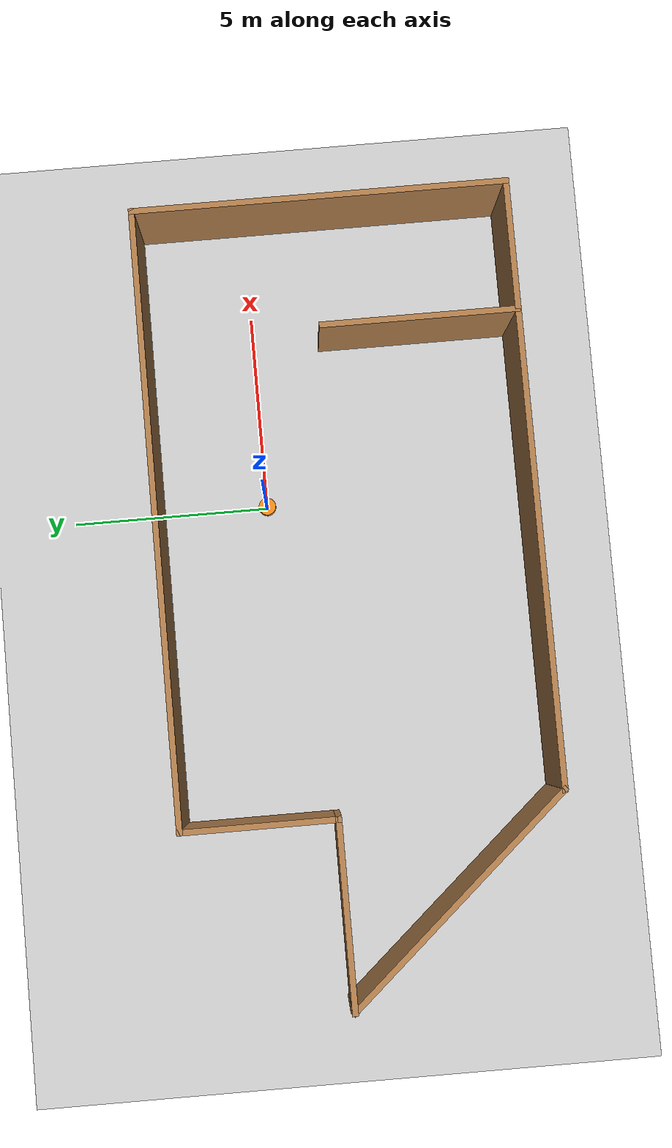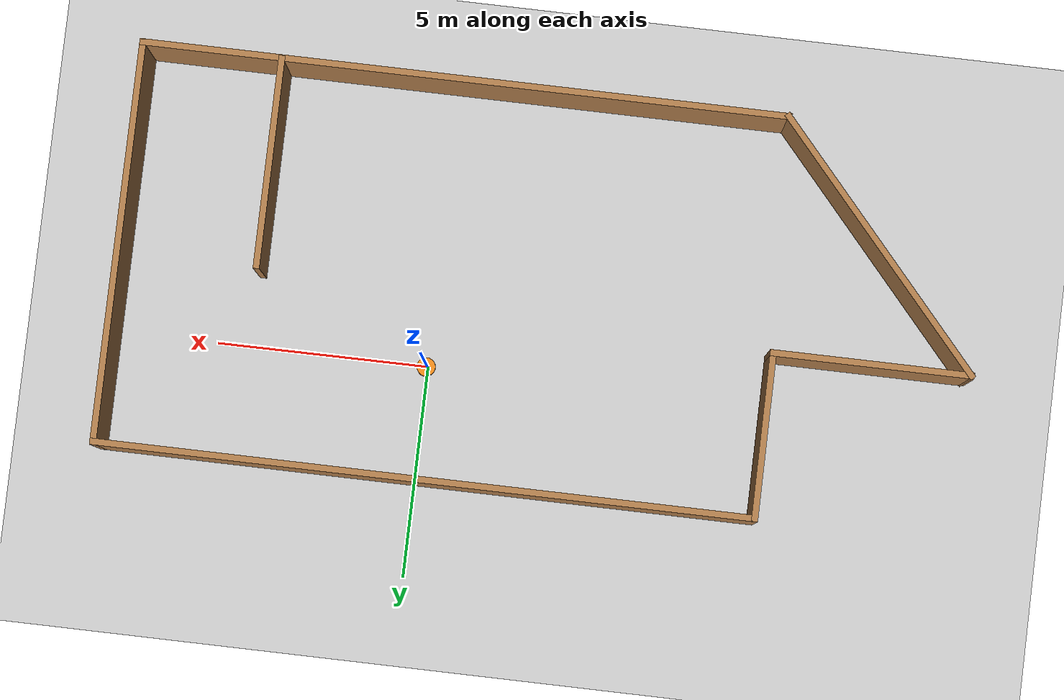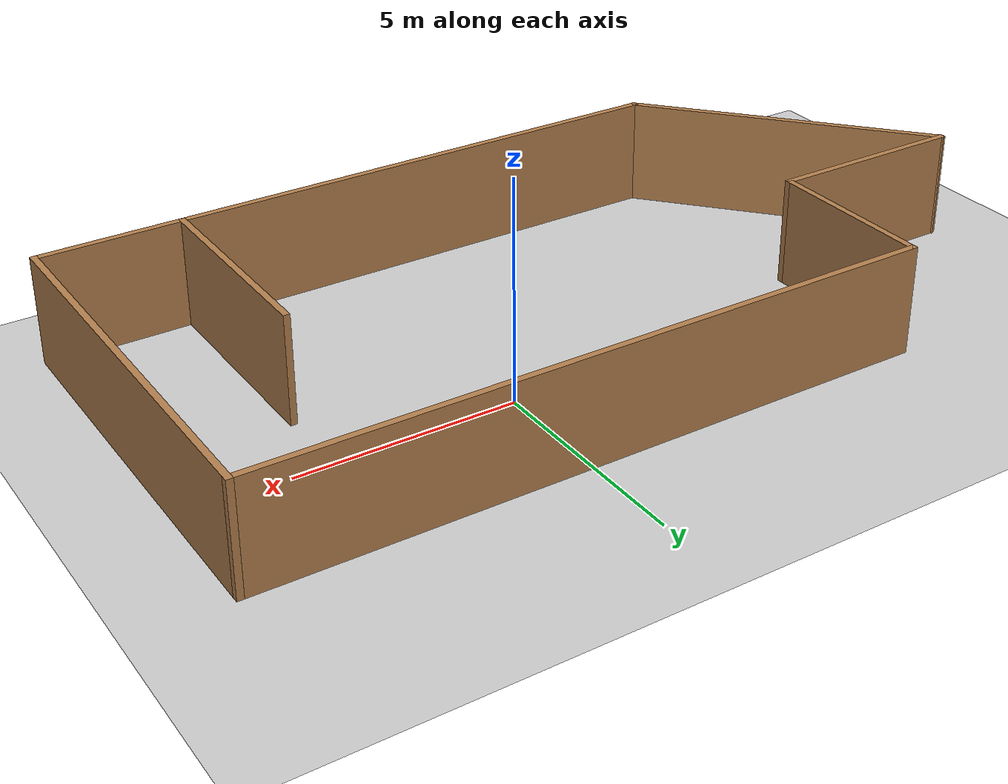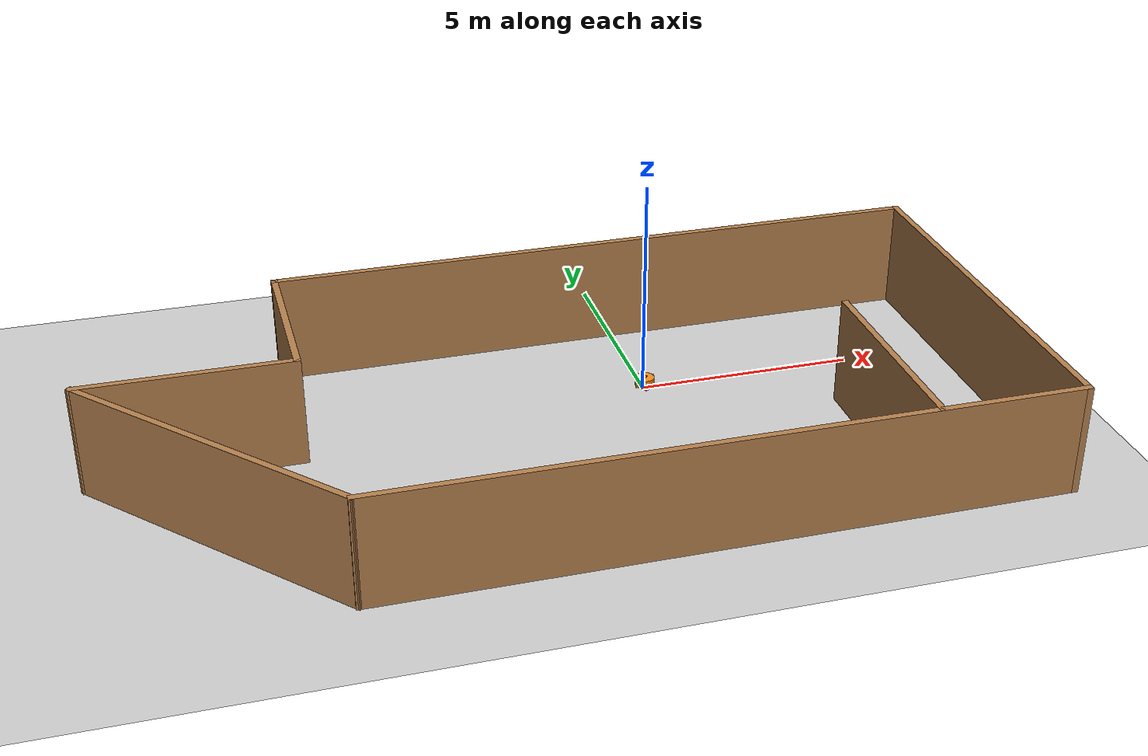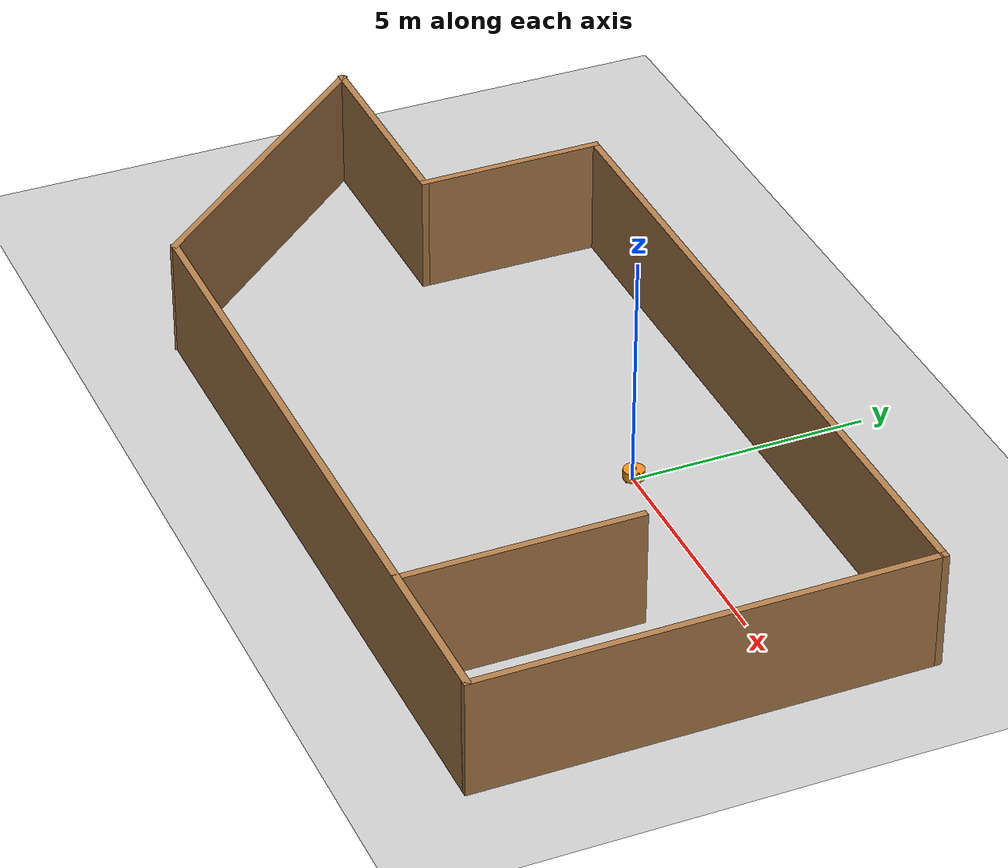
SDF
<sdf version="1.7">
 <world name="default">
  <light name="sun" type="directional">
   <pose>0 0 10 0 -0 0</pose>
   <diffuse>0.8 0.8 0.8 1</diffuse>
   <specular>0.2 0.2 0.2 1</specular>
   <attenuation>
    <range>1000</range>
    <constant>0.9</constant>
    <linear>0.01</linear>
    <quadratic>0.001</quadratic>
   </attenuation>
   <direction>-0.5 0.1 -0.9</direction>
   <spot><inner_angle>0</inner_angle><outer_angle>0</outer_angle><falloff>0</falloff></spot>
  </light>
  <model name="ground_plane">
   <static>1</static>
   <link name="link">
    <collision name="collision">
     <geometry><plane><normal>0 0 1</normal><size>100 100</size></plane></geometry>
     <surface>
      <contact><collide_bitmask>65535</collide_bitmask></contact>
      <friction><ode><mu>100</mu><mu2>50</mu2></ode></friction>
     </surface>
    </collision>
    <visual name="visual">
     <cast_shadows>0</cast_shadows>
     <geometry><plane><normal>0 0 1</normal><size>100 100</size></plane></geometry>
     <material>
      <script><uri>file://media/materials/scripts/gazebo.material</uri><name>Gazebo/Grey</name></script>
     </material>
    </visual>
   </link>
  </model>
  <gravity>0 0 -9.8</gravity>
  <magnetic_field>6e-06 2.3e-05 -4.2e-05</magnetic_field>
  <atmosphere type="adiabatic"/>
  <physics type="ode">
   <max_step_size>0.001</max_step_size>
   <real_time_factor>1</real_time_factor>
   <real_time_update_rate>1000</real_time_update_rate>
  </physics>
  <scene><ambient>0.4 0.4 0.4 1</ambient><background>0.7 0.7 0.7 1</background><shadows>1</shadows></scene>
  <spherical_coordinates>
   <surface_model>EARTH_WGS84</surface_model>
   <latitude_deg>0</latitude_deg>
   <longitude_deg>0</longitude_deg>
   <elevation>0</elevation>
   <heading_deg>0</heading_deg>
  </spherical_coordinates>
  <audio><device>default</device></audio>
  <model name="my_bot">
   <link name="base_link">
    <inertial>
     <pose>0.023913 0 0.081446 0 -0 0</pose>
     <mass>0.92</mass>
     <inertia>
      <ixx>0.0118931</ixx>
      <ixy>0</ixy>
      <ixz>-0.000408196</ixz>
      <iyy>0.0250071</iyy>
      <iyz>0</iyz>
      <izz>0.0253604</izz>
     </inertia>
    </inertial>
    <collision name="base_link_fixed_joint_lump__chassis_collision">
     <pose>0 0 0.1 0 -0 0</pose>
     <geometry><cylinder><length>0.2</length><radius>0.22</radius></cylinder></geometry>
    </collision>
    <collision name="base_link_fixed_joint_lump__back_connector_collision_1">
     <pose>-0.2 0 -0.02 0 -0 0</pose>
     <geometry><box><size>0.02 0.02 0.055</size></box></geometry>
    </collision>
    <collision name="base_link_fixed_joint_lump__caster_back_wheel_collision_2">
     <pose>-0.2 0 -0.0535 0 -0 0</pose>
     <geometry><sphere><radius>0.02</radius></sphere></geometry>
     <surface><friction><ode><mu>0.001</mu><mu2>0.001</mu2></ode></friction></surface>
    </collision>
    <collision name="base_link_fixed_joint_lump__front_connector_collision_3">
     <pose>0.2 0 -0.02 0 -0 0</pose>
     <geometry><box><size>0.02 0.02 0.055</size></box></geometry>
    </collision>
    <collision name="base_link_fixed_joint_lump__caster_front_wheel_collision_4">
     <pose>0.2 0 -0.0535 0 -0 0</pose>
     <geometry><sphere><radius>0.02</radius></sphere></geometry>
     <surface><friction><ode><mu>0.001</mu><mu2>0.001</mu2></ode></friction></surface>
    </collision>
    <collision name="base_link_fixed_joint_lump__laser_frame_collision_5">
     <pose>0 0 0.2 0 -0 0</pose>
     <geometry><cylinder><length>0.04</length><radius>0.05</radius></cylinder></geometry>
    </collision>
    <collision name="base_link_fixed_joint_lump__ultrasonic_frame_collision_6">
     <pose>0.22 0 0.0975 0 -0 0</pose>
     <geometry><box><size>0.005 0.04 0.02</size></box></geometry>
    </collision>
    <visual name="base_link_fixed_joint_lump__chassis_visual">
     <pose>0 0 0.1 0 -0 0</pose>
     <geometry><cylinder><length>0.2</length><radius>0.22</radius></cylinder></geometry>
     <material>
      <script><name>Gazebo/Orange</name><uri>file://media/materials/scripts/gazebo.material</uri></script>
     </material>
    </visual>
    <visual name="base_link_fixed_joint_lump__back_connector_visual_1">
     <pose>-0.2 0 -0.02 0 -0 0</pose>
     <geometry><box><size>0.02 0.02 0.055</size></box></geometry>
     <material>
      <script><name>Gazebo/Orange</name><uri>file://media/materials/scripts/gazebo.material</uri></script>
     </material>
    </visual>
    <visual name="base_link_fixed_joint_lump__caster_back_wheel_visual_2">
     <pose>-0.2 0 -0.0535 0 -0 0</pose>
     <geometry><sphere><radius>0.02</radius></sphere></geometry>
     <material>
      <script><name>Gazebo/White</name><uri>file://media/materials/scripts/gazebo.material</uri></script>
     </material>
    </visual>
    <visual name="base_link_fixed_joint_lump__camera_link_visual_3">
     <pose>0.2 0 0.22 0 0.15 0</pose>
     <geometry><box><size>0.01 0.03 0.03</size></box></geometry>
     <material>
      <script><name>Gazebo/Black</name><uri>file://media/materials/scripts/gazebo.material</uri></script>
     </material>
    </visual>
    <visual name="base_link_fixed_joint_lump__camera_link_visual_4">
     <pose>0.192528 0 0.170561 0 0.15 0</pose>
     <geometry><cylinder><length>0.1</length><radius>0.002</radius></cylinder></geometry>
     <material>
      <script><name>Gazebo/Black</name><uri>file://media/materials/scripts/gazebo.material</uri></script>
     </material>
    </visual>
    <visual name="base_link_fixed_joint_lump__front_connector_visual_5">
     <pose>0.2 0 -0.02 0 -0 0</pose>
     <geometry><box><size>0.02 0.02 0.055</size></box></geometry>
     <material>
      <script><name>Gazebo/Orange</name><uri>file://media/materials/scripts/gazebo.material</uri></script>
     </material>
    </visual>
    <visual name="base_link_fixed_joint_lump__caster_front_wheel_visual_6">
     <pose>0.2 0 -0.0535 0 -0 0</pose>
     <geometry><sphere><radius>0.02</radius></sphere></geometry>
     <material>
      <script><name>Gazebo/White</name><uri>file://media/materials/scripts/gazebo.material</uri></script>
     </material>
    </visual>
    <visual name="base_link_fixed_joint_lump__laser_frame_visual_7">
     <pose>0 0 0.2 0 -0 0</pose>
     <geometry><cylinder><length>0.04</length><radius>0.05</radius></cylinder></geometry>
     <material>
      <script><name>Gazebo/Red</name><uri>file://media/materials/scripts/gazebo.material</uri></script>
     </material>
    </visual>
    <visual name="base_link_fixed_joint_lump__ultrasonic_frame_visual_8">
     <pose>0.22 0 0.0975 0 -0 0</pose>
     <geometry><box><size>0.005 0.04 0.02</size></box></geometry>
     <material>
      <script><name>Gazebo/Red</name><uri>file://media/materials/scripts/gazebo.material</uri></script>
     </material>
    </visual>
    <sensor name="camera" type="camera">
     <visualize>1</visualize>
     <update_rate>10</update_rate>
     <camera>
      <horizontal_fov>1.089</horizontal_fov>
      <image><format>R8G8B8</format><width>640</width><height>480</height></image>
      <clip><near>0.05</near><far>8</far></clip>
     </camera>
     <plugin name="camera_controller" filename="libgazebo_ros_camera.so">
      <frame_name>camera_link_optical</frame_name>
     </plugin>
     <pose>0.2 0 0.22 0 0.15 0</pose>
    </sensor>
    <sensor name="laser" type="ray">
     <visualize>1</visualize>
     <update_rate>10</update_rate>
     <ray>
      <scan>
       <horizontal>
        <samples>360</samples>
        <min_angle>-3.14</min_angle>
        <max_angle>3.14</max_angle>
        <resolution>1</resolution>
       </horizontal>
       <vertical><samples>1</samples><min_angle>0</min_angle><max_angle>0</max_angle></vertical>
      </scan>
      <range><min>0.3</min><max>12</max></range>
     </ray>
     <plugin name="laser_controller" filename="libgazebo_ros_ray_sensor.so">
      <ros><remapping>~/out:=scan</remapping></ros>
      <output_type>sensor_msgs/LaserScan</output_type>
      <frame_name>laser_frame</frame_name>
     </plugin>
     <pose>0 0 0.2 0 -0 0</pose>
    </sensor>
    <sensor name="range_sensor" type="ray">
     <visualize>1</visualize>
     <ray>
      <scan>
       <horizontal>
        <samples>10</samples>
        <resolution>1</resolution>
        <min_angle>-0.087</min_angle>
        <max_angle>0.087</max_angle>
       </horizontal>
       <vertical><samples>1</samples><min_angle>0</min_angle><max_angle>0</max_angle></vertical>
      </scan>
      <range><min>0.1</min><max>5</max><resolution>0.01</resolution></range>
      <noise><type>gaussian</type><mean>0</mean><stddev>0.01</stddev></noise>
     </ray>
     <update_rate>30</update_rate>
     <plugin name="gazebo_ros_range_controller" filename="libgazebo_ros_ray_sensor.so">
      <ros><remapping>~/out:=range</remapping></ros>
      <output_type>sensor_msgs/Range</output_type>
      <frame_name>ultrasonic_frame</frame_name>
     </plugin>
     <pose>0.22 0 0.1 0 -0 0</pose>
    </sensor>
   </link>
   <joint name="left_wheel_joint" type="revolute">
    <pose relative_to="base_link">0 0.1485 0 -1.5708 0 0</pose>
    <parent>base_link</parent>
    <child>left_wheel</child>
    <axis>
     <xyz>0 0 1</xyz>
     <limit><lower>-1e+16</lower><upper>1e+16</upper></limit>
     <dynamics><spring_reference>0</spring_reference><spring_stiffness>0</spring_stiffness></dynamics>
    </axis>
   </joint>
   <link name="left_wheel">
    <pose relative_to="left_wheel_joint">0 0 0 0 -0 0</pose>
    <inertial>
     <mass>0.05</mass>
     <inertia>
      <ixx>8.07292e-05</ixx>
      <ixy>0</ixy>
      <ixz>0</ixz>
      <iyy>8.07292e-05</iyy>
      <iyz>0</iyz>
      <izz>0.000140625</izz>
     </inertia>
    </inertial>
    <collision name="left_wheel_collision">
     <geometry><sphere><radius>0.075</radius></sphere></geometry>
    </collision>
    <visual name="left_wheel_visual">
     <geometry><cylinder><length>0.05</length><radius>0.075</radius></cylinder></geometry>
     <material>
      <script><name>Gazebo/Blue</name><uri>file://media/materials/scripts/gazebo.material</uri></script>
     </material>
    </visual>
   </link>
   <joint name="right_wheel_joint" type="revolute">
    <pose relative_to="base_link">0 -0.1485 0 1.5708 -0 0</pose>
    <parent>base_link</parent>
    <child>right_wheel</child>
    <axis>
     <xyz>0 0 -1</xyz>
     <limit><lower>-1e+16</lower><upper>1e+16</upper></limit>
     <dynamics><spring_reference>0</spring_reference><spring_stiffness>0</spring_stiffness></dynamics>
    </axis>
   </joint>
   <link name="right_wheel">
    <pose relative_to="right_wheel_joint">0 0 0 0 -0 0</pose>
    <inertial>
     <mass>0.05</mass>
     <inertia>
      <ixx>8.07292e-05</ixx>
      <ixy>0</ixy>
      <ixz>0</ixz>
      <iyy>8.07292e-05</iyy>
      <iyz>0</iyz>
      <izz>0.000140625</izz>
     </inertia>
    </inertial>
    <collision name="right_wheel_collision">
     <geometry><sphere><radius>0.075</radius></sphere></geometry>
    </collision>
    <visual name="right_wheel_visual">
     <geometry><cylinder><length>0.05</length><radius>0.075</radius></cylinder></geometry>
     <material>
      <script><name>Gazebo/Blue</name><uri>file://media/materials/scripts/gazebo.material</uri></script>
     </material>
    </visual>
   </link>
   <static>0</static>
   <plugin name="gazebo_ros2_control" filename="libgazebo_ros2_control.so">
    <parameters>/home/jovan/ros2_ws/install/vedita_bot/share/vedita_bot/config/my_controllers.yaml</parameters>
    <parameters>/home/jovan/ros2_ws/install/vedita_bot/share/vedita_bot/config/gaz_ros2_ctl_use_sim.yaml</parameters>
   </plugin>
   <pose>0.02972 -0.001948 0.074996 1.8e-05 0.00749 0.001643</pose>
  </model>
  <model name="myworld">
   <pose>-2.61977 -1.95269 0 0 -0 0</pose>
   <link name="Wall_10">
    <collision name="Wall_10_Collision">
     <geometry><box><size>4 0.15 2.5</size></box></geometry>
     <pose>0 0 1.25 0 -0 0</pose>
    </collision>
    <visual name="Wall_10_Visual">
     <pose>0 0 1.25 0 -0 0</pose>
     <geometry><box><size>4 0.15 2.5</size></box></geometry>
     <material>
      <script><uri>file://media/materials/scripts/gazebo.material</uri><name>Gazebo/Wood</name></script>
      <ambient>1 1 1 1</ambient>
     </material>
     <meta><layer>0</layer></meta>
    </visual>
    <pose>-5.35957 2.76543 0 0 -0 -1.5708</pose>
   </link>
   <link name="Wall_11">
    <collision name="Wall_11_Collision">
     <geometry><box><size>4.75 0.15 2.5</size></box></geometry>
     <pose>0 0 1.25 0 -0 0</pose>
    </collision>
    <visual name="Wall_11_Visual">
     <pose>0 0 1.25 0 -0 0</pose>
     <geometry><box><size>4.75 0.15 2.5</size></box></geometry>
     <material>
      <script><uri>file://media/materials/scripts/gazebo.material</uri><name>Gazebo/Wood</name></script>
      <ambient>1 1 1 1</ambient>
     </material>
     <meta><layer>0</layer></meta>
    </visual>
    <pose>-7.65957 0.840428 0 0 -0 3.14159</pose>
   </link>
   <link name="Wall_12">
    <collision name="Wall_12_Collision">
     <geometry><box><size>7.48297 0.15 2.5</size></box></geometry>
     <pose>0 0 1.25 0 -0 0</pose>
    </collision>
    <visual name="Wall_12_Visual">
     <pose>0 0 1.25 0 -0 0</pose>
     <geometry><box><size>7.48297 0.15 2.5</size></box></geometry>
     <material>
      <script><uri>file://media/materials/scripts/gazebo.material</uri><name>Gazebo/Wood</name></script>
      <ambient>1 1 1 1</ambient>
     </material>
     <meta><layer>0</layer></meta>
    </visual>
    <pose>-7.53457 -1.90957 0 0 -0 -0.848118</pose>
   </link>
   <link name="Wall_14">
    <collision name="Wall_14_Collision">
     <geometry><box><size>5 0.15 2.5</size></box></geometry>
     <pose>0 0 1.25 0 -0 0</pose>
    </collision>
    <visual name="Wall_14_Visual">
     <pose>0 0 1.25 0 -0 0</pose>
     <geometry><box><size>5 0.15 2.5</size></box></geometry>
     <material>
      <script><uri>file://media/materials/scripts/gazebo.material</uri><name>Gazebo/Wood</name></script>
      <ambient>1 1 1 1</ambient>
     </material>
     <meta><layer>0</layer></meta>
    </visual>
    <pose>6.74082 -2.21673 0 0 -0 -1.5708</pose>
   </link>
   <link name="Wall_7">
    <collision name="Wall_7_Collision">
     <geometry><box><size>15.25 0.15 2.5</size></box></geometry>
     <pose>0 0 1.25 0 -0 0</pose>
    </collision>
    <visual name="Wall_7_Visual">
     <pose>0 0 1.25 0 -0 0</pose>
     <geometry><box><size>15.25 0.15 2.5</size></box></geometry>
     <material>
      <script><uri>file://media/materials/scripts/gazebo.material</uri><name>Gazebo/Wood</name></script>
      <ambient>1 1 1 1</ambient>
     </material>
     <meta><layer>0</layer></meta>
    </visual>
    <pose>2.44043 -4.65957 0 0 -0 0</pose>
   </link>
   <link name="Wall_8">
    <collision name="Wall_8_Collision">
     <geometry><box><size>9.5 0.15 2.5</size></box></geometry>
     <pose>0 0 1.25 0 -0 0</pose>
    </collision>
    <visual name="Wall_8_Visual">
     <pose>0 0 1.25 0 -0 0</pose>
     <geometry><box><size>9.5 0.15 2.5</size></box></geometry>
     <material>
      <script><uri>file://media/materials/scripts/gazebo.material</uri><name>Gazebo/Wood</name></script>
      <ambient>1 1 1 1</ambient>
     </material>
     <meta><layer>0</layer></meta>
    </visual>
    <pose>9.99043 0.015429 0 0 -0 1.5708</pose>
   </link>
   <link name="Wall_9">
    <collision name="Wall_9_Collision">
     <geometry><box><size>15.5 0.15 2.5</size></box></geometry>
     <pose>0 0 1.25 0 -0 0</pose>
    </collision>
    <visual name="Wall_9_Visual">
     <pose>0 0 1.25 0 -0 0</pose>
     <geometry><box><size>15.5 0.15 2.5</size></box></geometry>
     <material>
      <script><uri>file://media/materials/scripts/gazebo.material</uri><name>Gazebo/Wood</name></script>
      <ambient>1 1 1 1</ambient>
     </material>
     <meta><layer>0</layer></meta>
    </visual>
    <pose>2.31543 4.69043 0 0 -0 3.14159</pose>
   </link>
   <static>1</static>
  </model>
 </world>
</sdf>
